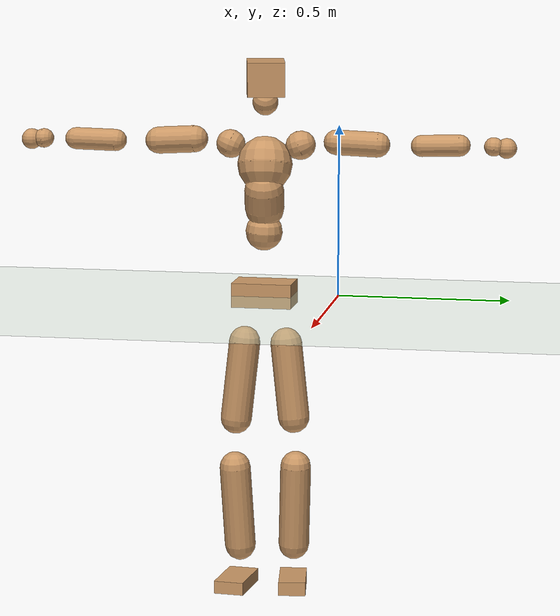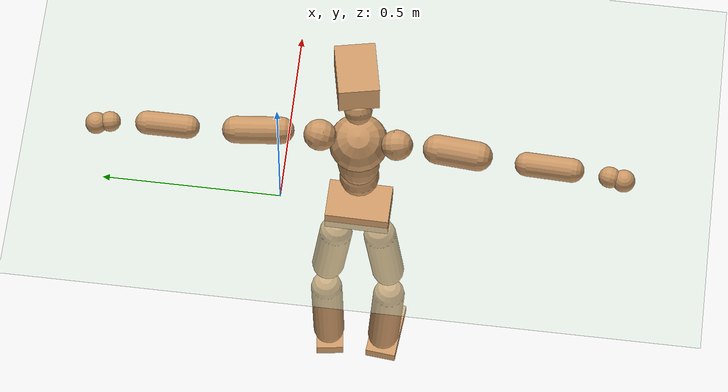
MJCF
<mujoco model="humanoid">
  <compiler coordinate="local" angle="radian"/>
  <default>
    <joint damping="0.0" armature="0.01" stiffness="0.0" limited="true"/>
    <geom conaffinity="1" condim="3" contype="7" margin="0.001" rgba="0.8 0.6 .4 1"/>
  </default>
  <asset>
    <texture type="skybox" builtin="gradient" rgb1=".4 .5 .6" rgb2="0 0 0" width="100" height="100"/>
    <texture builtin="flat" height="1278" mark="cross" markrgb="1 1 1" name="texgeom" random="0.01" rgb1="0.8 0.6 0.4" rgb2="0.8 0.6 0.4" type="cube" width="127"/>
    <texture builtin="checker" height="100" name="texplane" rgb1="0 0 0" rgb2="0.8 0.8 0.8" type="2d" width="100"/>
    <material name="MatPlane" reflectance="0.5" shininess="1" specular="1" texrepeat="60 60" texture="texplane"/>
    <material name="geom" texture="texgeom" texuniform="true"/>
  </asset>
  <worldbody>
    <light cutoff="100" diffuse="1 1 1" dir="-0 0 -1.3" directional="true" exponent="1" pos="0 0 1.3" specular=".1 .1 .1"/>
    <geom conaffinity="1" condim="3" name="floor" pos="0 0 0" rgba="0.8 0.9 0.8 1" size="100 100 .2" type="plane" material="MatPlane"/>
    <body name="Pelvis" pos="-0.0008 -0.2216 0.0114">
      <freejoint name="Pelvis"/>
      <geom type="box" contype="1" conaffinity="1" density="5359.374914" pos="-0.0064 0.0001 -0.0120" size="0.0559 0.0884 0.0358" quat="1.0000 0.0000 0.0000 -0.0082" name="Pelvis"/>
      <body name="L_Hip" pos="-0.0179 0.0554 -0.0867">
        <joint name="L_Hip_x" type="hinge" pos="0 0 0" axis="1 0 0" stiffness="1600" damping="160" armature="0.02" range="-180.0000 180.0000"/>
        <joint name="L_Hip_y" type="hinge" pos="0 0 0" axis="0 1 0" stiffness="1600" damping="160" armature="0.02" range="-180.0000 180.0000"/>
        <joint name="L_Hip_z" type="hinge" pos="0 0 0" axis="0 0 1" stiffness="1600" damping="160" armature="0.02" range="-180.0000 180.0000"/>
        <geom type="capsule" contype="1" conaffinity="1" density="2040.816327" size="0.0467" fromto="0.0009 0.0079 -0.0763 0.0037 0.0310 -0.2983" name="L_Hip"/>
        <body name="L_Knee" pos="0.0046 0.0389 -0.3745">
          <joint name="L_Knee_x" type="hinge" pos="0 0 0" axis="1 0 0" stiffness="1600" damping="160" armature="0.02" range="-180.0000 180.0000"/>
          <joint name="L_Knee_y" type="hinge" pos="0 0 0" axis="0 1 0" stiffness="1600" damping="160" armature="0.02" range="-180.0000 180.0000"/>
          <joint name="L_Knee_z" type="hinge" pos="0 0 0" axis="0 0 1" stiffness="1600" damping="160" armature="0.02" range="-180.0000 180.0000"/>
          <geom type="capsule" contype="1" conaffinity="1" density="1234.567901" size="0.0453" fromto="-0.0067 -0.0028 -0.0749 -0.0286 -0.0118 -0.3208" name="L_Knee"/>
          <body name="L_Ankle" pos="-0.0353 -0.0145 -0.3957">
            <joint name="L_Ankle_x" type="hinge" pos="0 0 0" axis="1 0 0" stiffness="1600" damping="160" armature="0.02" range="-180.0000 180.0000"/>
            <joint name="L_Ankle_y" type="hinge" pos="0 0 0" axis="0 1 0" stiffness="1600" damping="160" armature="0.02" range="-180.0000 180.0000"/>
            <joint name="L_Ankle_z" type="hinge" pos="0 0 0" axis="0 0 1" stiffness="1600" damping="160" armature="0.02" range="-180.0000 180.0000"/>
            <geom type="box" contype="1" conaffinity="1" density="999.999957" pos="0.0587 0.0080 -0.0277" size="0.0805 0.04 0.0205" quat="0.9977 0.0000 0.0000 0.0673" name="L_Ankle"/>
            <body name="L_Toe" pos="0.1174 0.0159 -0.0554">
              <joint name="L_Toe_x" type="hinge" pos="0 0 0" axis="1 0 0" stiffness="1000" damping="100" armature="0.02" range="-180.0000 180.0000"/>
              <joint name="L_Toe_y" type="hinge" pos="0 0 0" axis="0 1 0" stiffness="1000" damping="100" armature="0.02" range="-180.0000 180.0000"/>
              <joint name="L_Toe_z" type="hinge" pos="0 0 0" axis="0 0 1" stiffness="1000" damping="100" armature="0.02" range="-180.0000 180.0000"/>
              <geom type="box" contype="1" conaffinity="1" density="8835304.426061" pos="0.0000 0.0000 0.0282" size="0.0008 0.002 0.001" quat="0.9972 0.0000 0.0000 0.0744" name="L_Toe"/>
            </body>
          </body>
        </body>
      </body>
      <body name="R_Hip" pos="-0.0132 -0.0522 -0.0852">
        <joint name="R_Hip_x" type="hinge" pos="0 0 0" axis="1 0 0" stiffness="1600" damping="160" armature="0.02" range="-180.0000 180.0000"/>
        <joint name="R_Hip_y" type="hinge" pos="0 0 0" axis="0 1 0" stiffness="1600" damping="160" armature="0.02" range="-180.0000 180.0000"/>
        <joint name="R_Hip_z" type="hinge" pos="0 0 0" axis="0 0 1" stiffness="1600" damping="160" armature="0.02" range="-180.0000 180.0000"/>
        <geom type="capsule" contype="1" conaffinity="1" density="2040.816327" size="0.046" fromto="0.0004 -0.0084 -0.0755 0.0016 -0.0345 -0.3089" name="R_Hip"/>
        <body name="R_Knee" pos="0.002 -0.0429 -0.3844">
          <joint name="R_Knee_x" type="hinge" pos="0 0 0" axis="1 0 0" stiffness="1600" damping="160" armature="0.02" range="-180.0000 180.0000"/>
          <joint name="R_Knee_y" type="hinge" pos="0 0 0" axis="0 1 0" stiffness="1600" damping="160" armature="0.02" range="-180.0000 180.0000"/>
          <joint name="R_Knee_z" type="hinge" pos="0 0 0" axis="0 0 1" stiffness="1600" damping="160" armature="0.02" range="-180.0000 180.0000"/>
          <geom type="capsule" contype="1" conaffinity="1" density="1234.567901" size="0.0459" fromto="-0.0063 0.0035 -0.0756 -0.0265 0.0149 -0.3205" name="R_Knee"/>
          <body name="R_Ankle" pos="-0.0328 0.0184 -0.3961">
            <joint name="R_Ankle_x" type="hinge" pos="0 0 0" axis="1 0 0" stiffness="1600" damping="160" armature="0.02" range="-180.0000 180.0000"/>
            <joint name="R_Ankle_y" type="hinge" pos="0 0 0" axis="0 1 0" stiffness="1600" damping="160" armature="0.02" range="-180.0000 180.0000"/>
            <joint name="R_Ankle_z" type="hinge" pos="0 0 0" axis="0 0 1" stiffness="1600" damping="160" armature="0.02" range="-180.0000 180.0000"/>
            <geom type="box" contype="1" conaffinity="1" density="1000.000033" pos="0.0601 -0.0060 -0.0229" size="0.0837 0.0445 0.0189" quat="0.9988 0.0000 0.0000 -0.0500" name="R_Ankle"/>
            <body name="R_Toe" pos="0.1201 -0.012 -0.0458">
              <joint name="R_Toe_x" type="hinge" pos="0 0 0" axis="1 0 0" stiffness="1000" damping="100" armature="0.02" range="-180.0000 180.0000"/>
              <joint name="R_Toe_y" type="hinge" pos="0 0 0" axis="0 1 0" stiffness="1000" damping="100" armature="0.02" range="-180.0000 180.0000"/>
              <joint name="R_Toe_z" type="hinge" pos="0 0 0" axis="0 0 1" stiffness="1000" damping="100" armature="0.02" range="-180.0000 180.0000"/>
              <geom type="box" contype="1" conaffinity="1" density="8732604.689723" pos="0.0000 0.0000 0.0254" size="0.0008 0.0021 0.0011" quat="0.9992 0.0000 0.0000 -0.0410" name="R_Toe"/>
            </body>
          </body>
        </body>
      </body>
      <body name="Torso" pos="-0.0072 -0.0025 0.0997">
        <joint name="Torso_x" type="hinge" pos="0 0 0" axis="1 0 0" stiffness="2000" damping="200" armature="0.02" range="-180.0000 180.0000"/>
        <joint name="Torso_y" type="hinge" pos="0 0 0" axis="0 1 0" stiffness="2000" damping="200" armature="0.02" range="-180.0000 180.0000"/>
        <joint name="Torso_z" type="hinge" pos="0 0 0" axis="0 0 1" stiffness="2000" damping="200" armature="0.02" range="-180.0000 180.0000"/>
        <geom type="capsule" contype="1" conaffinity="1" density="2040.816327" size="0.0545" fromto="0.0029 0.0021 0.0710 0.0030 0.0022 0.0730" name="Torso"/>
        <body name="Spine" pos="0.0058 0.0043 0.1441">
          <joint name="Spine_x" type="hinge" pos="0 0 0" axis="1 0 0" stiffness="2000" damping="200" armature="0.02" range="-180.0000 180.0000"/>
          <joint name="Spine_y" type="hinge" pos="0 0 0" axis="0 1 0" stiffness="2000" damping="200" armature="0.02" range="-180.0000 180.0000"/>
          <joint name="Spine_z" type="hinge" pos="0 0 0" axis="0 0 1" stiffness="2000" damping="200" armature="0.02" range="-180.0000 180.0000"/>
          <geom type="capsule" contype="1" conaffinity="1" density="2040.816327" size="0.0576" fromto="0.0197 0.0019 0.0541 -0.0007 -0.0001 -0.0018" name="Spine"/>
          <body name="Chest" pos="0.0191 0.0018 0.0523">
            <joint name="Chest_x" type="hinge" pos="0 0 0" axis="1 0 0" stiffness="2000" damping="200" armature="0.02" range="-180.0000 180.0000"/>
            <joint name="Chest_y" type="hinge" pos="0 0 0" axis="0 1 0" stiffness="2000" damping="200" armature="0.02" range="-180.0000 180.0000"/>
            <joint name="Chest_z" type="hinge" pos="0 0 0" axis="0 0 1" stiffness="2000" damping="200" armature="0.02" range="-180.0000 180.0000"/>
            <geom type="capsule" contype="1" conaffinity="1" density="2040.816327" size="0.0802" fromto="-0.0222 -0.0013 0.0770 -0.0209 -0.0012 0.0726" name="Chest"/>
            <body name="Neck" pos="-0.0473 -0.0042 0.2182">
              <joint name="Neck_x" type="hinge" pos="0 0 0" axis="1 0 0" stiffness="1000" damping="100" armature="0.02" range="-180.0000 180.0000"/>
              <joint name="Neck_y" type="hinge" pos="0 0 0" axis="0 1 0" stiffness="1000" damping="100" armature="0.02" range="-180.0000 180.0000"/>
              <joint name="Neck_z" type="hinge" pos="0 0 0" axis="0 0 1" stiffness="1000" damping="100" armature="0.02" range="-180.0000 180.0000"/>
              <geom type="capsule" contype="1" conaffinity="1" density="1000" size="0.0375" fromto="0.0277 0.0049 0.0371 0.0289 0.0051 0.0387" name="Neck"/>
              <body name="Head" pos="0.0565 0.01 0.0758">
                <joint name="Head_x" type="hinge" pos="0 0 0" axis="1 0 0" stiffness="1000" damping="100" armature="0.02" range="-180.0000 180.0000"/>
                <joint name="Head_y" type="hinge" pos="0 0 0" axis="0 1 0" stiffness="1000" damping="100" armature="0.02" range="-180.0000 180.0000"/>
                <joint name="Head_z" type="hinge" pos="0 0 0" axis="0 0 1" stiffness="1000" damping="100" armature="0.02" range="-180.0000 180.0000"/>
                <geom type="box" contype="1" conaffinity="1" density="2250.000134" pos="0.0293 0.0060 0.0389" size="0.0705 0.0541 0.0495" quat="0.9949 0.0000 0.0000 0.1005" name="Head"/>
              </body>
            </body>
            <body name="L_Thorax" pos="-0.039 0.0633 0.1165">
              <joint name="L_Thorax_x" type="hinge" pos="0 0 0" axis="1 0 0" stiffness="1000" damping="100" armature="0.02" range="-180.0000 180.0000"/>
              <joint name="L_Thorax_y" type="hinge" pos="0 0 0" axis="0 1 0" stiffness="1000" damping="100" armature="0.02" range="-180.0000 180.0000"/>
              <joint name="L_Thorax_z" type="hinge" pos="0 0 0" axis="0 0 1" stiffness="1000" damping="100" armature="0.02" range="-180.0000 180.0000"/>
              <geom type="capsule" contype="1" conaffinity="1" density="1000" size="0.0422" fromto="0.0007 0.0397 0.0140 0.0006 0.0362 0.0128" name="L_Thorax"/>
              <body name="L_Shoulder" pos="0.0013 0.076 0.0268">
                <joint name="L_Shoulder_x" type="hinge" pos="0 0 0" axis="1 0 0" stiffness="1000" damping="100" armature="0.02" range="-720.0000 720.0000"/>
                <joint name="L_Shoulder_y" type="hinge" pos="0 0 0" axis="0 1 0" stiffness="1000" damping="100" armature="0.02" range="-720.0000 720.0000"/>
                <joint name="L_Shoulder_z" type="hinge" pos="0 0 0" axis="0 0 1" stiffness="1000" damping="100" armature="0.02" range="-720.0000 720.0000"/>
                <geom type="capsule" contype="1" conaffinity="1" density="1000" size="0.0368" fromto="-0.0049 0.0665 -0.0031 -0.0136 0.1861 -0.0088" name="L_Shoulder"/>
                <body name="L_Elbow" pos="-0.0185 0.2526 -0.0119">
                  <joint name="L_Elbow_x" type="hinge" pos="0 0 0" axis="1 0 0" stiffness="1000" damping="100" armature="0.02" range="-720.0000 720.0000"/>
                  <joint name="L_Elbow_y" type="hinge" pos="0 0 0" axis="0 1 0" stiffness="1000" damping="100" armature="0.02" range="-720.0000 720.0000"/>
                  <joint name="L_Elbow_z" type="hinge" pos="0 0 0" axis="0 0 1" stiffness="1000" damping="100" armature="0.02" range="-720.0000 720.0000"/>
                  <geom type="capsule" contype="1" conaffinity="1" density="1000" size="0.0318" fromto="-0.0010 0.0618 0.0018 -0.0028 0.1714 0.0051" name="L_Elbow"/>
                  <body name="L_Wrist" pos="-0.0038 0.2332 0.007">
                    <joint name="L_Wrist_x" type="hinge" pos="0 0 0" axis="1 0 0" stiffness="600" damping="60" armature="0.02" range="-180.0000 180.0000"/>
                    <joint name="L_Wrist_y" type="hinge" pos="0 0 0" axis="0 1 0" stiffness="600" damping="60" armature="0.02" range="-180.0000 180.0000"/>
                    <joint name="L_Wrist_z" type="hinge" pos="0 0 0" axis="0 0 1" stiffness="600" damping="60" armature="0.02" range="-180.0000 180.0000"/>
                    <geom type="capsule" contype="1" conaffinity="1" density="1000" size="0.0273" fromto="-0.0061 0.0358 -0.0044 -0.0064 0.0378 -0.0046" name="L_Wrist"/>
                    <body name="L_Hand" pos="-0.0125 0.0736 -0.009">
                      <joint name="L_Hand_x" type="hinge" pos="0 0 0" axis="1 0 0" stiffness="600" damping="60" armature="0.02" range="-180.0000 180.0000"/>
                      <joint name="L_Hand_y" type="hinge" pos="0 0 0" axis="0 1 0" stiffness="600" damping="60" armature="0.02" range="-180.0000 180.0000"/>
                      <joint name="L_Hand_z" type="hinge" pos="0 0 0" axis="0 0 1" stiffness="600" damping="60" armature="0.02" range="-180.0000 180.0000"/>
                      <geom type="sphere" contype="1" conaffinity="1" density="1000" size="0.0296" pos="0.0000 0.0000 0.0000" name="L_Hand"/>
                    </body>
                  </body>
                </body>
              </body>
            </body>
            <body name="R_Thorax" pos="-0.0432 -0.0668 0.1142">
              <joint name="R_Thorax_x" type="hinge" pos="0 0 0" axis="1 0 0" stiffness="1000" damping="100" armature="0.02" range="-180.0000 180.0000"/>
              <joint name="R_Thorax_y" type="hinge" pos="0 0 0" axis="0 1 0" stiffness="1000" damping="100" armature="0.02" range="-180.0000 180.0000"/>
              <joint name="R_Thorax_z" type="hinge" pos="0 0 0" axis="0 0 1" stiffness="1000" damping="100" armature="0.02" range="-180.0000 180.0000"/>
              <geom type="capsule" contype="1" conaffinity="1" density="1000" size="0.0416" fromto="-0.0017 -0.0389 0.0151 -0.0018 -0.0407 0.0158" name="R_Thorax"/>
              <body name="R_Shoulder" pos="-0.0035 -0.0796 0.0308">
                <joint name="R_Shoulder_x" type="hinge" pos="0 0 0" axis="1 0 0" stiffness="1000" damping="100" armature="0.02" range="-720.0000 720.0000"/>
                <joint name="R_Shoulder_y" type="hinge" pos="0 0 0" axis="0 1 0" stiffness="1000" damping="100" armature="0.02" range="-720.0000 720.0000"/>
                <joint name="R_Shoulder_z" type="hinge" pos="0 0 0" axis="0 0 1" stiffness="1000" damping="100" armature="0.02" range="-720.0000 720.0000"/>
                <geom type="capsule" contype="1" conaffinity="1" density="1000" size="0.0396" fromto="-0.0033 -0.0693 -0.0044 -0.0084 -0.1773 -0.0112" name="R_Shoulder"/>
                <body name="R_Elbow" pos="-0.0117 -0.2466 -0.0156">
                  <joint name="R_Elbow_x" type="hinge" pos="0 0 0" axis="1 0 0" stiffness="1000" damping="100" armature="0.02" range="-720.0000 720.0000"/>
                  <joint name="R_Elbow_y" type="hinge" pos="0 0 0" axis="0 1 0" stiffness="1000" damping="100" armature="0.02" range="-720.0000 720.0000"/>
                  <joint name="R_Elbow_z" type="hinge" pos="0 0 0" axis="0 0 1" stiffness="1000" damping="100" armature="0.02" range="-720.0000 720.0000"/>
                  <geom type="capsule" contype="1" conaffinity="1" density="1000" size="0.0324" fromto="-0.0028 -0.0623 0.0011 -0.0082 -0.1833 0.0032" name="R_Elbow"/>
                  <body name="R_Wrist" pos="-0.011 -0.2456 0.0043">
                    <joint name="R_Wrist_x" type="hinge" pos="0 0 0" axis="1 0 0" stiffness="600" damping="60" armature="0.02" range="-180.0000 180.0000"/>
                    <joint name="R_Wrist_y" type="hinge" pos="0 0 0" axis="0 1 0" stiffness="600" damping="60" armature="0.02" range="-180.0000 180.0000"/>
                    <joint name="R_Wrist_z" type="hinge" pos="0 0 0" axis="0 0 1" stiffness="600" damping="60" armature="0.02" range="-180.0000 180.0000"/>
                    <geom type="capsule" contype="1" conaffinity="1" density="1000" size="0.0285" fromto="-0.0046 -0.0371 -0.0033 -0.0049 -0.0391 -0.0035" name="R_Wrist"/>
                    <body name="R_Hand" pos="-0.0095 -0.0763 -0.0068">
                      <joint name="R_Hand_x" type="hinge" pos="0 0 0" axis="1 0 0" stiffness="600" damping="60" armature="0.02" range="-180.0000 180.0000"/>
                      <joint name="R_Hand_y" type="hinge" pos="0 0 0" axis="0 1 0" stiffness="600" damping="60" armature="0.02" range="-180.0000 180.0000"/>
                      <joint name="R_Hand_z" type="hinge" pos="0 0 0" axis="0 0 1" stiffness="600" damping="60" armature="0.02" range="-180.0000 180.0000"/>
                      <geom type="sphere" contype="1" conaffinity="1" density="1000" size="0.0304" pos="0.0000 0.0000 0.0000" name="R_Hand"/>
                    </body>
                  </body>
                </body>
              </body>
            </body>
          </body>
        </body>
      </body>
    </body>
  </worldbody>
  <actuator>
    <motor name="L_Hip_x" joint="L_Hip_x" gear="500"/>
    <motor name="L_Hip_y" joint="L_Hip_y" gear="500"/>
    <motor name="L_Hip_z" joint="L_Hip_z" gear="500"/>
    <motor name="L_Knee_x" joint="L_Knee_x" gear="500"/>
    <motor name="L_Knee_y" joint="L_Knee_y" gear="500"/>
    <motor name="L_Knee_z" joint="L_Knee_z" gear="500"/>
    <motor name="L_Ankle_x" joint="L_Ankle_x" gear="500"/>
    <motor name="L_Ankle_y" joint="L_Ankle_y" gear="500"/>
    <motor name="L_Ankle_z" joint="L_Ankle_z" gear="500"/>
    <motor name="L_Toe_x" joint="L_Toe_x" gear="500"/>
    <motor name="L_Toe_y" joint="L_Toe_y" gear="500"/>
    <motor name="L_Toe_z" joint="L_Toe_z" gear="500"/>
    <motor name="R_Hip_x" joint="R_Hip_x" gear="500"/>
    <motor name="R_Hip_y" joint="R_Hip_y" gear="500"/>
    <motor name="R_Hip_z" joint="R_Hip_z" gear="500"/>
    <motor name="R_Knee_x" joint="R_Knee_x" gear="500"/>
    <motor name="R_Knee_y" joint="R_Knee_y" gear="500"/>
    <motor name="R_Knee_z" joint="R_Knee_z" gear="500"/>
    <motor name="R_Ankle_x" joint="R_Ankle_x" gear="500"/>
    <motor name="R_Ankle_y" joint="R_Ankle_y" gear="500"/>
    <motor name="R_Ankle_z" joint="R_Ankle_z" gear="500"/>
    <motor name="R_Toe_x" joint="R_Toe_x" gear="500"/>
    <motor name="R_Toe_y" joint="R_Toe_y" gear="500"/>
    <motor name="R_Toe_z" joint="R_Toe_z" gear="500"/>
    <motor name="Torso_x" joint="Torso_x" gear="500"/>
    <motor name="Torso_y" joint="Torso_y" gear="500"/>
    <motor name="Torso_z" joint="Torso_z" gear="500"/>
    <motor name="Spine_x" joint="Spine_x" gear="500"/>
    <motor name="Spine_y" joint="Spine_y" gear="500"/>
    <motor name="Spine_z" joint="Spine_z" gear="500"/>
    <motor name="Chest_x" joint="Chest_x" gear="500"/>
    <motor name="Chest_y" joint="Chest_y" gear="500"/>
    <motor name="Chest_z" joint="Chest_z" gear="500"/>
    <motor name="Neck_x" joint="Neck_x" gear="500"/>
    <motor name="Neck_y" joint="Neck_y" gear="500"/>
    <motor name="Neck_z" joint="Neck_z" gear="500"/>
    <motor name="Head_x" joint="Head_x" gear="500"/>
    <motor name="Head_y" joint="Head_y" gear="500"/>
    <motor name="Head_z" joint="Head_z" gear="500"/>
    <motor name="L_Thorax_x" joint="L_Thorax_x" gear="500"/>
    <motor name="L_Thorax_y" joint="L_Thorax_y" gear="500"/>
    <motor name="L_Thorax_z" joint="L_Thorax_z" gear="500"/>
    <motor name="L_Shoulder_x" joint="L_Shoulder_x" gear="500"/>
    <motor name="L_Shoulder_y" joint="L_Shoulder_y" gear="500"/>
    <motor name="L_Shoulder_z" joint="L_Shoulder_z" gear="500"/>
    <motor name="L_Elbow_x" joint="L_Elbow_x" gear="500"/>
    <motor name="L_Elbow_y" joint="L_Elbow_y" gear="500"/>
    <motor name="L_Elbow_z" joint="L_Elbow_z" gear="500"/>
    <motor name="L_Wrist_x" joint="L_Wrist_x" gear="500"/>
    <motor name="L_Wrist_y" joint="L_Wrist_y" gear="500"/>
    <motor name="L_Wrist_z" joint="L_Wrist_z" gear="500"/>
    <motor name="L_Hand_x" joint="L_Hand_x" gear="500"/>
    <motor name="L_Hand_y" joint="L_Hand_y" gear="500"/>
    <motor name="L_Hand_z" joint="L_Hand_z" gear="500"/>
    <motor name="R_Thorax_x" joint="R_Thorax_x" gear="500"/>
    <motor name="R_Thorax_y" joint="R_Thorax_y" gear="500"/>
    <motor name="R_Thorax_z" joint="R_Thorax_z" gear="500"/>
    <motor name="R_Shoulder_x" joint="R_Shoulder_x" gear="500"/>
    <motor name="R_Shoulder_y" joint="R_Shoulder_y" gear="500"/>
    <motor name="R_Shoulder_z" joint="R_Shoulder_z" gear="500"/>
    <motor name="R_Elbow_x" joint="R_Elbow_x" gear="500"/>
    <motor name="R_Elbow_y" joint="R_Elbow_y" gear="500"/>
    <motor name="R_Elbow_z" joint="R_Elbow_z" gear="500"/>
    <motor name="R_Wrist_x" joint="R_Wrist_x" gear="500"/>
    <motor name="R_Wrist_y" joint="R_Wrist_y" gear="500"/>
    <motor name="R_Wrist_z" joint="R_Wrist_z" gear="500"/>
    <motor name="R_Hand_x" joint="R_Hand_x" gear="500"/>
    <motor name="R_Hand_y" joint="R_Hand_y" gear="500"/>
    <motor name="R_Hand_z" joint="R_Hand_z" gear="500"/>
  </actuator>
  <contact>
    <exclude body1="Torso" body2="Chest"/>
    <exclude body1="Head" body2="Chest"/>
    <exclude body1="R_Knee" body2="R_Toe"/>
    <exclude body1="R_Knee" body2="L_Ankle"/>
    <exclude body1="R_Knee" body2="L_Toe"/>
    <exclude body1="L_Knee" body2="L_Toe"/>
    <exclude body1="L_Knee" body2="R_Ankle"/>
    <exclude body1="L_Knee" body2="R_Toe"/>
    <exclude body1="L_Shoulder" body2="Chest"/>
    <exclude body1="R_Shoulder" body2="Chest"/>
  </contact>
  <sensor/>
  <size njmax="700" nconmax="700"/>
</mujoco>
